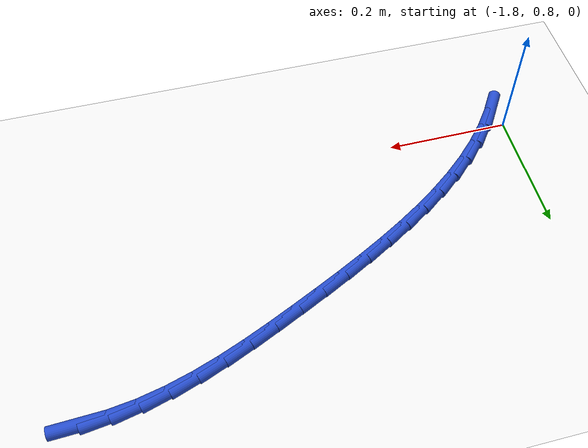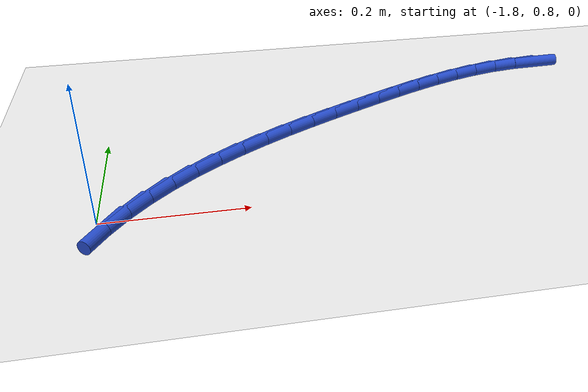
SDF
<sdf version="1.6">
 <world name="default">
  <model name="ground_plane">
   <static>1</static>
   <link name="link">
    <collision name="collision">
     <geometry><plane><normal>0 0 1</normal><size>100 100</size></plane></geometry>
     <surface><friction><ode><mu>100</mu><mu2>50</mu2></ode></friction></surface>
    </collision>
    <visual name="visual">
     <cast_shadows>0</cast_shadows>
     <geometry><plane><normal>0 0 1</normal><size>100 100</size></plane></geometry>
     <material>
      <script><uri>file://media/materials/scripts/gazebo.material</uri><name>Gazebo/WhiteGlow</name></script>
     </material>
    </visual>
   </link>
  </model>
  <model name="line">
   <link name="link_40">
    <pose>-1.0577136286021367 1.154902921974768 0.01 0 1.57 0.04029200847532528</pose>
    <collision name="collision">
     <geometry><cylinder><radius>0.01</radius><length>0.08</length></cylinder></geometry>
    </collision>
    <visual name="visual">
     <material>
      <script><name>Gazebo/Blue</name><uri>file://media/materials/scripts/gazebo.material</uri></script>
     </material>
     <geometry><cylinder><radius>0.01</radius><length>0.08</length></cylinder></geometry>
    </visual>
   </link>
   <link name="link_41">
    <pose>-1.0985486877578032 1.1532567044803732 0.01 0 1.57 0.13213787029776297</pose>
    <collision name="collision">
     <geometry><cylinder><radius>0.01</radius><length>0.08</length></cylinder></geometry>
    </collision>
    <visual name="visual">
     <material>
      <script><name>Gazebo/Blue</name><uri>file://media/materials/scripts/gazebo.material</uri></script>
     </material>
     <geometry><cylinder><radius>0.01</radius><length>0.08</length></cylinder></geometry>
    </visual>
   </link>
   <link name="link_42">
    <pose>-1.1390123178358764 1.1478785886999863 0.01 0 1.57 0.21524728273505536</pose>
    <collision name="collision">
     <geometry><cylinder><radius>0.01</radius><length>0.08</length></cylinder></geometry>
    </collision>
    <visual name="visual">
     <material>
      <script><name>Gazebo/Blue</name><uri>file://media/materials/scripts/gazebo.material</uri></script>
     </material>
     <geometry><cylinder><radius>0.01</radius><length>0.08</length></cylinder></geometry>
    </visual>
   </link>
   <link name="link_43">
    <pose>-1.179131440031456 1.1391071724135908 0.01 0 1.57 0.2850279630217975</pose>
    <collision name="collision">
     <geometry><cylinder><radius>0.01</radius><length>0.08</length></cylinder></geometry>
    </collision>
    <visual name="visual">
     <material>
      <script><name>Gazebo/Blue</name><uri>file://media/materials/scripts/gazebo.material</uri></script>
     </material>
     <geometry><cylinder><radius>0.01</radius><length>0.08</length></cylinder></geometry>
    </visual>
   </link>
   <link name="link_44">
    <pose>-1.2189735923553477 1.127433184068576 0.01 0 1.57 0.34148465113643794</pose>
    <collision name="collision">
     <geometry><cylinder><radius>0.01</radius><length>0.08</length></cylinder></geometry>
    </collision>
    <visual name="visual">
     <material>
      <script><name>Gazebo/Blue</name><uri>file://media/materials/scripts/gazebo.material</uri></script>
     </material>
     <geometry><cylinder><radius>0.01</radius><length>0.08</length></cylinder></geometry>
    </visual>
   </link>
   <link name="link_45">
    <pose>-1.2586063222847301 1.1133473875687294 0.01 0 1.57 0.3850930146785881</pose>
    <collision name="collision">
     <geometry><cylinder><radius>0.01</radius><length>0.08</length></cylinder></geometry>
    </collision>
    <visual name="visual">
     <material>
      <script><name>Gazebo/Blue</name><uri>file://media/materials/scripts/gazebo.material</uri></script>
     </material>
     <geometry><cylinder><radius>0.01</radius><length>0.08</length></cylinder></geometry>
    </visual>
   </link>
   <link name="link_46">
    <pose>-1.2980971772967849 1.0973405468178385 0.01 0 1.57 0.41649989035423574</pose>
    <collision name="collision">
     <geometry><cylinder><radius>0.01</radius><length>0.08</length></cylinder></geometry>
    </collision>
    <visual name="visual">
     <material>
      <script><name>Gazebo/Blue</name><uri>file://media/materials/scripts/gazebo.material</uri></script>
     </material>
     <geometry><cylinder><radius>0.01</radius><length>0.08</length></cylinder></geometry>
    </visual>
   </link>
   <link name="link_47">
    <pose>-1.3375137048686905 1.079903425719691 0.01 0 1.57 0.4363233595991484</pose>
    <collision name="collision">
     <geometry><cylinder><radius>0.01</radius><length>0.08</length></cylinder></geometry>
    </collision>
    <visual name="visual">
     <material>
      <script><name>Gazebo/Blue</name><uri>file://media/materials/scripts/gazebo.material</uri></script>
     </material>
     <geometry><cylinder><radius>0.01</radius><length>0.08</length></cylinder></geometry>
    </visual>
   </link>
   <link name="link_48">
    <pose>-1.3769234524776284 1.0615267881780728 0.01 0 1.57 0.4465400464991043</pose>
    <collision name="collision">
     <geometry><cylinder><radius>0.01</radius><length>0.08</length></cylinder></geometry>
    </collision>
    <visual name="visual">
     <material>
      <script><name>Gazebo/Blue</name><uri>file://media/materials/scripts/gazebo.material</uri></script>
     </material>
     <geometry><cylinder><radius>0.01</radius><length>0.08</length></cylinder></geometry>
    </visual>
   </link>
   <link name="link_49">
    <pose>-1.416364322015859 1.042642702480539 0.01 0 1.57 0.45775210390355414</pose>
    <collision name="collision">
     <geometry><cylinder><radius>0.01</radius><length>0.08</length></cylinder></geometry>
    </collision>
    <visual name="visual">
     <material>
      <script><name>Gazebo/Blue</name><uri>file://media/materials/scripts/gazebo.material</uri></script>
     </material>
     <geometry><cylinder><radius>0.01</radius><length>0.08</length></cylinder></geometry>
    </visual>
   </link>
   <link name="link_50">
    <pose>-1.455669905100056 1.0232787207763443 0.01 0 1.57 0.47443972566426673</pose>
    <collision name="collision">
     <geometry><cylinder><radius>0.01</radius><length>0.08</length></cylinder></geometry>
    </collision>
    <visual name="visual">
     <material>
      <script><name>Gazebo/Blue</name><uri>file://media/materials/scripts/gazebo.material</uri></script>
     </material>
     <geometry><cylinder><radius>0.01</radius><length>0.08</length></cylinder></geometry>
    </visual>
   </link>
   <link name="link_51">
    <pose>-1.4945877038483149 1.003291945679537 0.01 0 1.57 0.4968179873094166</pose>
    <collision name="collision">
     <geometry><cylinder><radius>0.01</radius><length>0.08</length></cylinder></geometry>
    </collision>
    <visual name="visual">
     <material>
      <script><name>Gazebo/Blue</name><uri>file://media/materials/scripts/gazebo.material</uri></script>
     </material>
     <geometry><cylinder><radius>0.01</radius><length>0.08</length></cylinder></geometry>
    </visual>
   </link>
   <link name="link_52">
    <pose>-1.5328649188666017 0.982538882837018 0.01 0 1.57 0.5251878328590559</pose>
    <collision name="collision">
     <geometry><cylinder><radius>0.01</radius><length>0.08</length></cylinder></geometry>
    </collision>
    <visual name="visual">
     <material>
      <script><name>Gazebo/Blue</name><uri>file://media/materials/scripts/gazebo.material</uri></script>
     </material>
     <geometry><cylinder><radius>0.01</radius><length>0.08</length></cylinder></geometry>
    </visual>
   </link>
   <link name="link_53">
    <pose>-1.570248750760882 0.9608760378956859 0.01 0 1.57 0.5599394599012931</pose>
    <collision name="collision">
     <geometry><cylinder><radius>0.01</radius><length>0.08</length></cylinder></geometry>
    </collision>
    <visual name="visual">
     <material>
      <script><name>Gazebo/Blue</name><uri>file://media/materials/scripts/gazebo.material</uri></script>
     </material>
     <geometry><cylinder><radius>0.01</radius><length>0.08</length></cylinder></geometry>
    </visual>
   </link>
   <link name="link_54">
    <pose>-1.6064864001371204 0.9381599165024402 0.01 0 1.57 0.6015328103334711</pose>
    <collision name="collision">
     <geometry><cylinder><radius>0.01</radius><length>0.08</length></cylinder></geometry>
    </collision>
    <visual name="visual">
     <material>
      <script><name>Gazebo/Blue</name><uri>file://media/materials/scripts/gazebo.material</uri></script>
     </material>
     <geometry><cylinder><radius>0.01</radius><length>0.08</length></cylinder></geometry>
    </visual>
   </link>
   <link name="link_55">
    <pose>-1.6413250676012823 0.9142470243041803 0.01 0 1.57 0.6504646513402169</pose>
    <collision name="collision">
     <geometry><cylinder><radius>0.01</radius><length>0.08</length></cylinder></geometry>
    </collision>
    <visual name="visual">
     <material>
      <script><name>Gazebo/Blue</name><uri>file://media/materials/scripts/gazebo.material</uri></script>
     </material>
     <geometry><cylinder><radius>0.01</radius><length>0.08</length></cylinder></geometry>
    </visual>
   </link>
   <link name="link_56">
    <pose>-1.6745119537593334 0.888993866947805 0.01 0 1.57 0.7072150500660427</pose>
    <collision name="collision">
     <geometry><cylinder><radius>0.01</radius><length>0.08</length></cylinder></geometry>
    </collision>
    <visual name="visual">
     <material>
      <script><name>Gazebo/Blue</name><uri>file://media/materials/scripts/gazebo.material</uri></script>
     </material>
     <geometry><cylinder><radius>0.01</radius><length>0.08</length></cylinder></geometry>
    </visual>
   </link>
   <link name="link_57">
    <pose>-1.7057942592172388 0.8622569500802147 0.01 0 1.57 0.7721659109851984</pose>
    <collision name="collision">
     <geometry><cylinder><radius>0.01</radius><length>0.08</length></cylinder></geometry>
    </collision>
    <visual name="visual">
     <material>
      <script><name>Gazebo/Blue</name><uri>file://media/materials/scripts/gazebo.material</uri></script>
     </material>
     <geometry><cylinder><radius>0.01</radius><length>0.08</length></cylinder></geometry>
    </visual>
   </link>
   <link name="link_58">
    <pose>-1.7349191845809644 0.8338927793483081 0.01 0 1.57 0.8454874473303543</pose>
    <collision name="collision">
     <geometry><cylinder><radius>0.01</radius><length>0.08</length></cylinder></geometry>
    </collision>
    <visual name="visual">
     <material>
      <script><name>Gazebo/Blue</name><uri>file://media/materials/scripts/gazebo.material</uri></script>
     </material>
     <geometry><cylinder><radius>0.01</radius><length>0.08</length></cylinder></geometry>
    </visual>
   </link>
   <link name="link_59">
    <pose>-1.761633930456474 0.8037578603989848 0.01 0 1.57 0.9264124519732472</pose>
    <collision name="collision">
     <geometry><cylinder><radius>0.01</radius><length>0.08</length></cylinder></geometry>
    </collision>
    <visual name="visual">
     <material>
      <script><name>Gazebo/Blue</name><uri>file://media/materials/scripts/gazebo.material</uri></script>
     </material>
     <geometry><cylinder><radius>0.01</radius><length>0.08</length></cylinder></geometry>
    </visual>
   </link>
   <link name="link_60">
    <pose>-1.7857069150194433 0.7717195083017632 0.01 0 1.57 1.003297893461719</pose>
    <collision name="collision">
     <geometry><cylinder><radius>0.01</radius><length>0.08</length></cylinder></geometry>
    </collision>
    <visual name="visual">
     <material>
      <script><name>Gazebo/Blue</name><uri>file://media/materials/scripts/gazebo.material</uri></script>
     </material>
     <geometry><cylinder><radius>0.01</radius><length>0.08</length></cylinder></geometry>
    </visual>
   </link>
  </model>
 </world>
</sdf>
